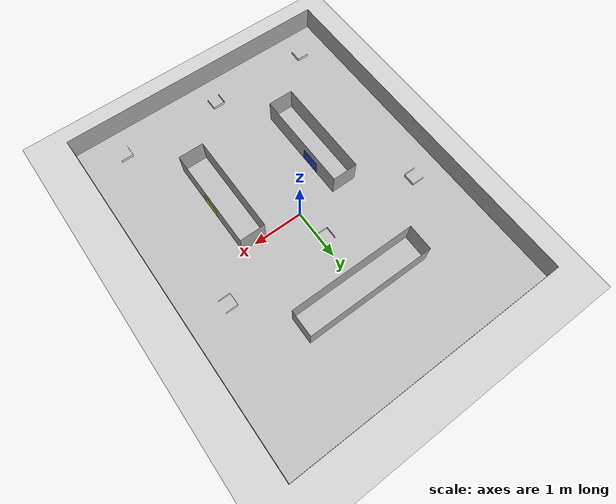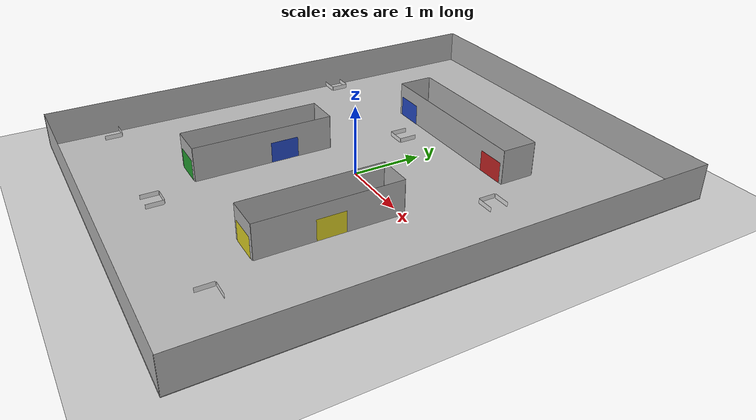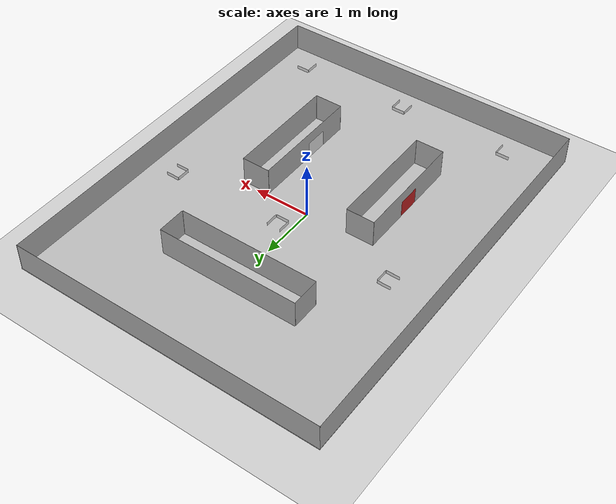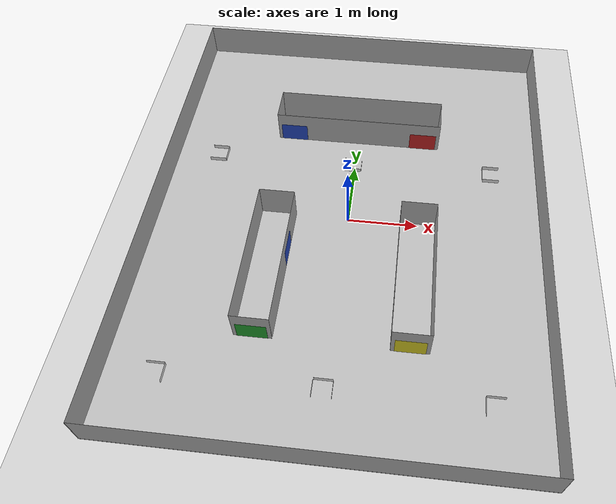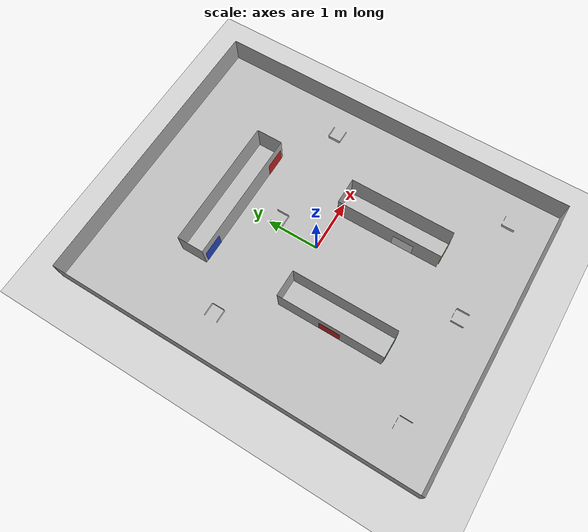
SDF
<sdf version="1.7">
 <world name="default">
  <light name="sun" type="directional">
   <cast_shadows>0</cast_shadows>
   <pose>0 0 100 0 -0 0</pose>
   <diffuse>0.8 0.8 0.8 1</diffuse>
   <specular>0.1 0.1 0.1 1</specular>
   <attenuation>
    <range>1000</range>
    <constant>0.9</constant>
    <linear>0.01</linear>
    <quadratic>0.001</quadratic>
   </attenuation>
   <direction>-0.5 0.5 -1</direction>
   <spot><inner_angle>0</inner_angle><outer_angle>0</outer_angle><falloff>0</falloff></spot>
  </light>
  <model name="ground_plane">
   <static>1</static>
   <link name="link">
    <collision name="collision">
     <geometry><plane><normal>0 0 1</normal><size>100 100</size></plane></geometry>
     <surface><friction><ode><mu>100</mu><mu2>50</mu2></ode></friction></surface>
    </collision>
    <visual name="visual">
     <cast_shadows>0</cast_shadows>
     <geometry><plane><normal>0 0 1</normal><size>100 100</size></plane></geometry>
     <material>
      <script><uri>file://media/materials/scripts/gazebo.material</uri><name>Gazebo/Grey</name></script>
     </material>
    </visual>
   </link>
  </model>
  <gravity>0 0 -9.8</gravity>
  <magnetic_field>6e-06 2.3e-05 -4.2e-05</magnetic_field>
  <atmosphere type="adiabatic"/>
  <physics name="default_physics" default="0" type="ode">
   <max_step_size>0.001</max_step_size>
   <real_time_factor>1</real_time_factor>
   <real_time_update_rate>1000</real_time_update_rate>
  </physics>
  <scene><ambient>0.4 0.4 0.4 1</ambient><background>0.7 0.7 0.7 1</background><shadows>1</shadows></scene>
  <spherical_coordinates>
   <surface_model>EARTH_WGS84</surface_model>
   <latitude_deg>0</latitude_deg>
   <longitude_deg>0</longitude_deg>
   <elevation>0</elevation>
   <heading_deg>0</heading_deg>
  </spherical_coordinates>
  <model name="signboard_white_01">
   <static>1</static>
   <link name="link">
    <visual name="visual">
     <geometry><plane><normal>0 0 1</normal><size>0.23 0.062</size></plane></geometry>
     <material>
      <script>
       <uri>file://materials/scripts</uri>
       <uri>file://materials/textures</uri>
       <name>SignboardWhite01</name>
      </script>
     </material>
    </visual>
   </link>
   <pose>-2 -2.629 0.405 1.5708 -0 3.14159</pose>
  </model>
  <model name="signboard_white_02">
   <static>1</static>
   <link name="link">
    <visual name="visual">
     <geometry><plane><normal>0 0 1</normal><size>0.23 0.062</size></plane></geometry>
     <material>
      <script>
       <uri>file://materials/scripts</uri>
       <uri>file://materials/textures</uri>
       <name>SignboardWhite02</name>
      </script>
     </material>
    </visual>
   </link>
   <pose>-2 0.629 0.405 1.5708 -0 0</pose>
  </model>
  <model name="signboard_white_03">
   <static>1</static>
   <link name="link">
    <visual name="visual">
     <geometry><plane><normal>0 0 1</normal><size>0.23 0.062</size></plane></geometry>
     <material>
      <script>
       <uri>file://materials/scripts</uri>
       <uri>file://materials/textures</uri>
       <name>SignboardWhite03</name>
      </script>
     </material>
    </visual>
   </link>
   <pose>-2 0.871 0.405 1.5708 -0 3.14159</pose>
  </model>
  <model name="signboard_white_04">
   <static>1</static>
   <link name="link">
    <visual name="visual">
     <geometry><plane><normal>0 0 1</normal><size>0.23 0.062</size></plane></geometry>
     <material>
      <script>
       <uri>file://materials/scripts</uri>
       <uri>file://materials/textures</uri>
       <name>SignboardWhite04</name>
      </script>
     </material>
    </visual>
   </link>
   <pose>-1.879 -2.75 0.405 1.5708 -0 1.5708</pose>
  </model>
  <model name="signboard_white_05">
   <static>1</static>
   <link name="link">
    <visual name="visual">
     <geometry><plane><normal>0 0 1</normal><size>0.23 0.062</size></plane></geometry>
     <material>
      <script>
       <uri>file://materials/scripts</uri>
       <uri>file://materials/textures</uri>
       <name>SignboardWhite05</name>
      </script>
     </material>
    </visual>
   </link>
   <pose>-1.879 0.75 0.405 1.5708 -0 1.5708</pose>
  </model>
  <model name="signboard_white_06">
   <static>1</static>
   <link name="link">
    <visual name="visual">
     <geometry><plane><normal>0 0 1</normal><size>0.23 0.062</size></plane></geometry>
     <material>
      <script>
       <uri>file://materials/scripts</uri>
       <uri>file://materials/textures</uri>
       <name>SignboardWhite06</name>
      </script>
     </material>
    </visual>
   </link>
   <pose>-0.121 -2.75 0.405 1.5708 0 -1.5708</pose>
  </model>
  <model name="signboard_white_07">
   <static>1</static>
   <link name="link">
    <visual name="visual">
     <geometry><plane><normal>0 0 1</normal><size>0.23 0.062</size></plane></geometry>
     <material>
      <script>
       <uri>file://materials/scripts</uri>
       <uri>file://materials/textures</uri>
       <name>SignboardWhite07</name>
      </script>
     </material>
    </visual>
   </link>
   <pose>-0.121 0.75 0.405 1.5708 0 -1.5708</pose>
  </model>
  <model name="signboard_white_08">
   <static>1</static>
   <link name="link">
    <visual name="visual">
     <geometry><plane><normal>0 0 1</normal><size>0.23 0.062</size></plane></geometry>
     <material>
      <script>
       <uri>file://materials/scripts</uri>
       <uri>file://materials/textures</uri>
       <name>SignboardWhite08</name>
      </script>
     </material>
    </visual>
   </link>
   <pose>0 -2.629 0.405 1.5708 -0 3.14159</pose>
  </model>
  <model name="signboard_white_09">
   <static>1</static>
   <link name="link">
    <visual name="visual">
     <geometry><plane><normal>0 0 1</normal><size>0.23 0.062</size></plane></geometry>
     <material>
      <script>
       <uri>file://materials/scripts</uri>
       <uri>file://materials/textures</uri>
       <name>SignboardWhite09</name>
      </script>
     </material>
    </visual>
   </link>
   <pose>0 0.629 0.405 1.5708 -0 0</pose>
  </model>
  <model name="signboard_white_10">
   <static>1</static>
   <link name="link">
    <visual name="visual">
     <geometry><plane><normal>0 0 1</normal><size>0.23 0.062</size></plane></geometry>
     <material>
      <script>
       <uri>file://materials/scripts</uri>
       <uri>file://materials/textures</uri>
       <name>SignboardWhite10</name>
      </script>
     </material>
    </visual>
   </link>
   <pose>0.121 -2.75 0.405 1.5708 -0 1.5708</pose>
  </model>
  <model name="signboard_white_11">
   <static>1</static>
   <link name="link">
    <visual name="visual">
     <geometry><plane><normal>0 0 1</normal><size>0.23 0.062</size></plane></geometry>
     <material>
      <script>
       <uri>file://materials/scripts</uri>
       <uri>file://materials/textures</uri>
       <name>SignboardWhite11</name>
      </script>
     </material>
    </visual>
   </link>
   <pose>0.121 0.75 0.405 1.5708 -0 1.5708</pose>
  </model>
  <model name="signboard_white_12">
   <static>1</static>
   <link name="link">
    <visual name="visual">
     <geometry><plane><normal>0 0 1</normal><size>0.23 0.062</size></plane></geometry>
     <material>
      <script>
       <uri>file://materials/scripts</uri>
       <uri>file://materials/textures</uri>
       <name>SignboardWhite12</name>
      </script>
     </material>
    </visual>
   </link>
   <pose>1.879 -2.75 0.405 1.5708 0 -1.5708</pose>
  </model>
  <model name="signboard_white_13">
   <static>1</static>
   <link name="link">
    <visual name="visual">
     <geometry><plane><normal>0 0 1</normal><size>0.23 0.062</size></plane></geometry>
     <material>
      <script>
       <uri>file://materials/scripts</uri>
       <uri>file://materials/textures</uri>
       <name>SignboardWhite13</name>
      </script>
     </material>
    </visual>
   </link>
   <pose>1.879 0.75 0.405 1.5708 0 -1.5708</pose>
  </model>
  <model name="signboard_white_14">
   <static>1</static>
   <link name="link">
    <visual name="visual">
     <geometry><plane><normal>0 0 1</normal><size>0.23 0.062</size></plane></geometry>
     <material>
      <script>
       <uri>file://materials/scripts</uri>
       <uri>file://materials/textures</uri>
       <name>SignboardWhite14</name>
      </script>
     </material>
    </visual>
   </link>
   <pose>2 -2.629 0.405 1.5708 -0 3.14159</pose>
  </model>
  <model name="signboard_white_15">
   <static>1</static>
   <link name="link">
    <visual name="visual">
     <geometry><plane><normal>0 0 1</normal><size>0.23 0.062</size></plane></geometry>
     <material>
      <script>
       <uri>file://materials/scripts</uri>
       <uri>file://materials/textures</uri>
       <name>SignboardWhite15</name>
      </script>
     </material>
    </visual>
   </link>
   <pose>2 0.629 0.405 1.5708 -0 0</pose>
  </model>
  <model name="signboard_white_16">
   <static>1</static>
   <link name="link">
    <visual name="visual">
     <geometry><plane><normal>0 0 1</normal><size>0.23 0.062</size></plane></geometry>
     <material>
      <script>
       <uri>file://materials/scripts</uri>
       <uri>file://materials/textures</uri>
       <name>SignboardWhite16</name>
      </script>
     </material>
    </visual>
   </link>
   <pose>2 0.871 0.405 1.5708 -0 3.14159</pose>
  </model>
  <model name="store_burger_red">
   <static>1</static>
   <link name="link">
    <visual name="visual">
     <geometry><plane><normal>0 0 1</normal><size>0.4 0.3</size></plane></geometry>
     <material>
      <script>
       <uri>file://materials/scripts</uri>
       <uri>file://materials/textures</uri>
       <name>StoreBurgerRed</name>
      </script>
     </material>
    </visual>
   </link>
   <pose>-1.251 -1 0.2 1.5708 0 -1.5708</pose>
  </model>
  <model name="store_burger_yellow">
   <static>1</static>
   <link name="link">
    <visual name="visual">
     <geometry><plane><normal>0 0 1</normal><size>0.4 0.3</size></plane></geometry>
     <material>
      <script>
       <uri>file://materials/scripts</uri>
       <uri>file://materials/textures</uri>
       <name>StoreBurgerYellow</name>
      </script>
     </material>
    </visual>
   </link>
   <pose>1.251 -1 0.2 1.5708 -0 1.5708</pose>
  </model>
  <model name="store_cafe_blue">
   <static>1</static>
   <link name="link">
    <visual name="visual">
     <geometry><plane><normal>0 0 1</normal><size>0.4 0.3</size></plane></geometry>
     <material>
      <script>
       <uri>file://materials/scripts</uri>
       <uri>file://materials/textures</uri>
       <name>StoreCafeBlue</name>
      </script>
     </material>
    </visual>
   </link>
   <pose>-0.749 -0.7 0.2 1.5708 -0 1.5708</pose>
  </model>
  <model name="store_cafe_yellow">
   <static>1</static>
   <link name="link">
    <visual name="visual">
     <geometry><plane><normal>0 0 1</normal><size>0.4 0.3</size></plane></geometry>
     <material>
      <script>
       <uri>file://materials/scripts</uri>
       <uri>file://materials/textures</uri>
       <name>StoreCafeYellow</name>
      </script>
     </material>
    </visual>
   </link>
   <pose>1 -2.01 0.2 1.5708 -0 0</pose>
  </model>
  <model name="store_phar_red">
   <static>1</static>
   <link name="link">
    <visual name="visual">
     <geometry><plane><normal>0 0 1</normal><size>0.4 0.3</size></plane></geometry>
     <material>
      <script>
       <uri>file://materials/scripts</uri>
       <uri>file://materials/textures</uri>
       <name>StorePharRed</name>
      </script>
     </material>
    </visual>
   </link>
   <pose>1 1.49 0.2 1.5708 -0 0</pose>
  </model>
  <model name="store_phar_white">
   <static>1</static>
   <link name="link">
    <visual name="visual">
     <geometry><plane><normal>0 0 1</normal><size>0.4 0.3</size></plane></geometry>
     <material>
      <script>
       <uri>file://materials/scripts</uri>
       <uri>file://materials/textures</uri>
       <name>StorePharWhite</name>
      </script>
     </material>
    </visual>
   </link>
   <pose>0.749 -1.3 0.2 1.5708 0 -1.5708</pose>
  </model>
  <model name="store_store_blue">
   <static>1</static>
   <link name="link">
    <visual name="visual">
     <geometry><plane><normal>0 0 1</normal><size>0.4 0.3</size></plane></geometry>
     <material>
      <script>
       <uri>file://materials/scripts</uri>
       <uri>file://materials/textures</uri>
       <name>StoreStoreBlue</name>
      </script>
     </material>
    </visual>
   </link>
   <pose>-1 1.49 0.2 1.5708 -0 0</pose>
  </model>
  <model name="store_store_green">
   <static>1</static>
   <link name="link">
    <visual name="visual">
     <geometry><plane><normal>0 0 1</normal><size>0.4 0.3</size></plane></geometry>
     <material>
      <script>
       <uri>file://materials/scripts</uri>
       <uri>file://materials/textures</uri>
       <name>StoreStoreGreen</name>
      </script>
     </material>
    </visual>
   </link>
   <pose>-1 -2.01 0.2 1.5708 -0 0</pose>
  </model>
  <model name="SafetyZone">
   <static>1</static>
   <link name="link">
    <visual name="visual">
     <geometry><plane><normal>0 0 1</normal><size>5.5 0.75</size></plane></geometry>
     <material>
      <script>
       <uri>file://materials/scripts</uri>
       <uri>file://materials/textures</uri>
       <name>SafetyZone</name>
      </script>
     </material>
    </visual>
   </link>
   <pose>0 3.125 0.051 0 -0 0</pose>
  </model>
  <model name="brick_1">
   <static>1</static>
   <link name="link">
    <visual name="visual">
     <geometry><plane><normal>0 0 1</normal><size>0.5 0.5</size></plane></geometry>
     <material>
      <script><uri>file://materials/scripts</uri><uri>file://materials/textures</uri><name>brick_1</name></script>
     </material>
    </visual>
   </link>
   <pose>-1 -2.005 0.3 1.5708 -0 0</pose>
  </model>
  <model name="brick_1_1">
   <static>1</static>
   <link name="link">
    <visual name="visual">
     <geometry><plane><normal>0 0 1</normal><size>0.5 0.5</size></plane></geometry>
     <material>
      <script><uri>file://materials/scripts</uri><uri>file://materials/textures</uri><name>brick_1</name></script>
     </material>
    </visual>
   </link>
   <pose>-1 0.005 0.3 1.5708 -0 3.14159</pose>
  </model>
  <model name="brick_1_2">
   <static>1</static>
   <link name="link">
    <visual name="visual">
     <geometry><plane><normal>0 0 1</normal><size>0.5 0.5</size></plane></geometry>
     <material>
      <script><uri>file://materials/scripts</uri><uri>file://materials/textures</uri><name>brick_1</name></script>
     </material>
    </visual>
   </link>
   <pose>-1.251 1.75 0.3 1.5708 0 -1.5708</pose>
  </model>
  <model name="brick_1_3">
   <static>1</static>
   <link name="link">
    <visual name="visual">
     <geometry><plane><normal>0 0 1</normal><size>0.5 0.5</size></plane></geometry>
     <material>
      <script><uri>file://materials/scripts</uri><uri>file://materials/textures</uri><name>brick_1</name></script>
     </material>
    </visual>
   </link>
   <pose>1 -2.005 0.3 1.5708 -0 0</pose>
  </model>
  <model name="brick_1_4">
   <static>1</static>
   <link name="link">
    <visual name="visual">
     <geometry><plane><normal>0 0 1</normal><size>0.5 0.5</size></plane></geometry>
     <material>
      <script><uri>file://materials/scripts</uri><uri>file://materials/textures</uri><name>brick_1</name></script>
     </material>
    </visual>
   </link>
   <pose>1 0.005 0.3 1.5708 -0 3.14159</pose>
  </model>
  <model name="brick_1_5">
   <static>1</static>
   <link name="link">
    <visual name="visual">
     <geometry><plane><normal>0 0 1</normal><size>0.5 0.5</size></plane></geometry>
     <material>
      <script><uri>file://materials/scripts</uri><uri>file://materials/textures</uri><name>brick_1</name></script>
     </material>
    </visual>
   </link>
   <pose>1.2505 1.75 0.3 1.5708 -0 1.5708</pose>
  </model>
  <model name="brick_2">
   <static>1</static>
   <link name="link">
    <visual name="visual">
     <geometry><plane><normal>0 0 1</normal><size>2 0.5</size></plane></geometry>
     <material>
      <script><uri>file://materials/scripts</uri><uri>file://materials/textures</uri><name>brick_2</name></script>
     </material>
    </visual>
   </link>
   <pose>-1.2508 -1 0.3 1.5708 0 -1.5708</pose>
  </model>
  <model name="brick_2_1">
   <static>1</static>
   <link name="link">
    <visual name="visual">
     <geometry><plane><normal>0 0 1</normal><size>2 0.5</size></plane></geometry>
     <material>
      <script><uri>file://materials/scripts</uri><uri>file://materials/textures</uri><name>brick_2</name></script>
     </material>
    </visual>
   </link>
   <pose>-0.7492 -1 0.3 1.5708 -0 1.5708</pose>
  </model>
  <model name="brick_2_2">
   <static>1</static>
   <link name="link">
    <visual name="visual">
     <geometry><plane><normal>0 0 1</normal><size>2 0.5</size></plane></geometry>
     <material>
      <script><uri>file://materials/scripts</uri><uri>file://materials/textures</uri><name>brick_2</name></script>
     </material>
    </visual>
   </link>
   <pose>0.7492 -1 0.3 1.5708 0 -1.5708</pose>
  </model>
  <model name="brick_2_3">
   <static>1</static>
   <link name="link">
    <visual name="visual">
     <geometry><plane><normal>0 0 1</normal><size>2 0.5</size></plane></geometry>
     <material>
      <script><uri>file://materials/scripts</uri><uri>file://materials/textures</uri><name>brick_2</name></script>
     </material>
    </visual>
   </link>
   <pose>1.2508 -1 0.3 1.5708 -0 1.5708</pose>
  </model>
  <model name="brick_3">
   <static>1</static>
   <link name="link">
    <visual name="visual">
     <geometry><plane><normal>0 0 1</normal><size>2.5 0.5</size></plane></geometry>
     <material>
      <script><uri>file://materials/scripts</uri><uri>file://materials/textures</uri><name>brick_3</name></script>
     </material>
    </visual>
   </link>
   <pose>0 1.495 0.3 1.5708 -0 0</pose>
  </model>
  <model name="brick_3_1">
   <static>1</static>
   <link name="link">
    <visual name="visual">
     <geometry><plane><normal>0 0 1</normal><size>2.5 0.5</size></plane></geometry>
     <material>
      <script><uri>file://materials/scripts</uri><uri>file://materials/textures</uri><name>brick_3</name></script>
     </material>
    </visual>
   </link>
   <pose>0 2.005 0.3 1.5708 -0 3.14159</pose>
  </model>
  <model name="brick_4">
   <static>1</static>
   <link name="link">
    <visual name="visual">
     <geometry><plane><normal>0 0 1</normal><size>5.5 0.5</size></plane></geometry>
     <material>
      <script>
       <uri>file://materials/scripts</uri>
       <uri>file://materials/textures</uri>
       <name>pickup_wall</name>
      </script>
     </material>
    </visual>
   </link>
   <pose>0 3.495 0.3 1.5708 -0 0</pose>
  </model>
  <model name="brick_4_1">
   <static>1</static>
   <link name="link">
    <visual name="visual">
     <geometry><plane><normal>0 0 1</normal><size>5.5 0.5</size></plane></geometry>
     <material>
      <script><uri>file://materials/scripts</uri><uri>file://materials/textures</uri><name>brick_4</name></script>
     </material>
    </visual>
   </link>
   <pose>0 -3.495 0.3 1.5708 -0 3.14159</pose>
  </model>
  <model name="brick_5">
   <static>1</static>
   <link name="link">
    <visual name="visual">
     <geometry><plane><normal>0 0 1</normal><size>7 0.5</size></plane></geometry>
     <material>
      <script><uri>file://materials/scripts</uri><uri>file://materials/textures</uri><name>brick_5</name></script>
     </material>
    </visual>
   </link>
   <pose>-2.745 0 0.3 1.5708 -0 1.5708</pose>
  </model>
  <model name="brick_5_1">
   <static>1</static>
   <link name="link">
    <visual name="visual">
     <geometry><plane><normal>0 0 1</normal><size>7 0.5</size></plane></geometry>
     <material>
      <script><uri>file://materials/scripts</uri><uri>file://materials/textures</uri><name>brick_5</name></script>
     </material>
    </visual>
   </link>
   <pose>2.745 0 0.3 1.5708 0 -1.5708</pose>
  </model>
  <model name="plate">
   <static>1</static>
   <link name="link">
    <visual name="visual">
     <geometry><plane><normal>0 0 1</normal><size>5.5 7</size></plane></geometry>
     <material>
      <script><uri>file://materials/scripts</uri><uri>file://materials/textures</uri><name>plate</name></script>
     </material>
    </visual>
   </link>
   <pose>0 0 0.0505 0 -0 0</pose>
  </model>
  <audio><device>default</device></audio>
 </world>
</sdf>
